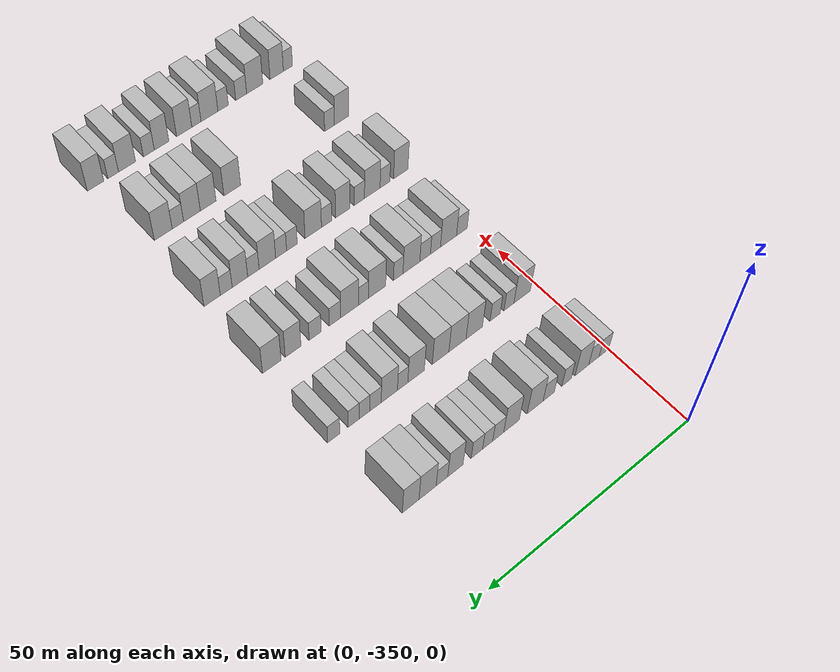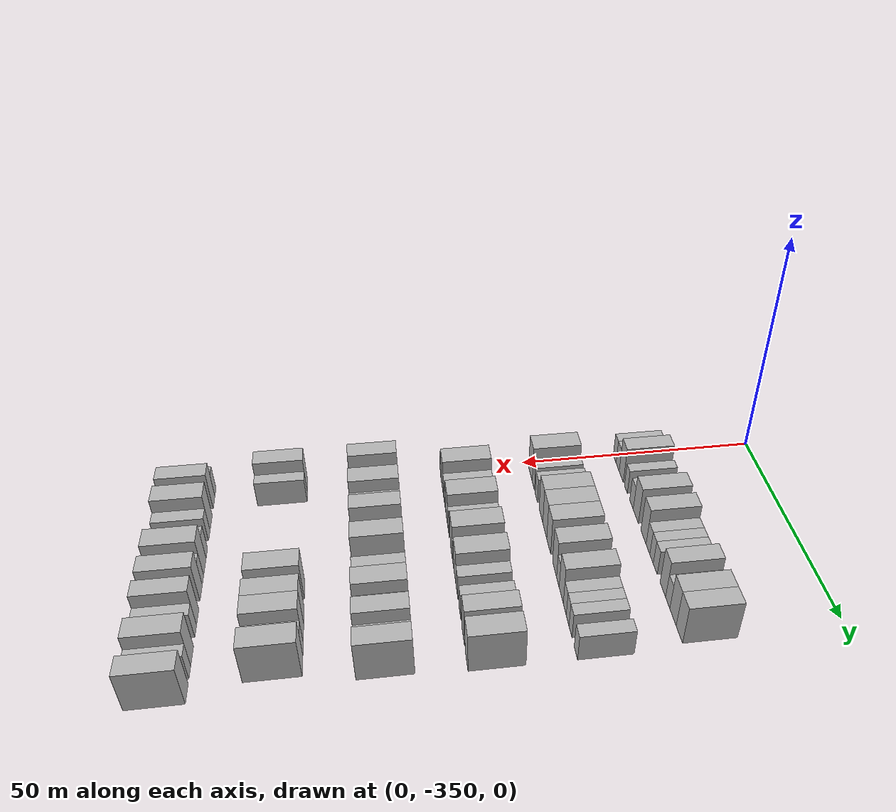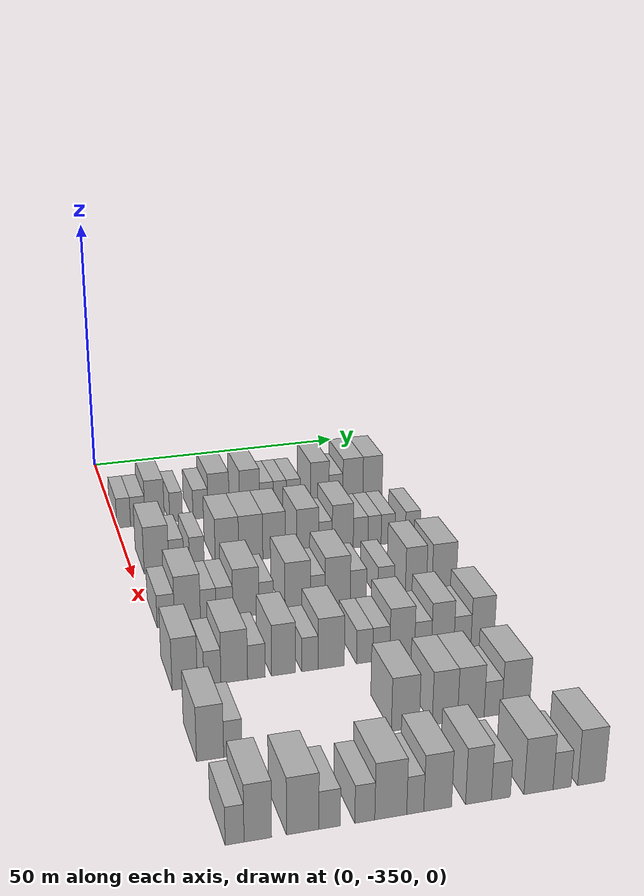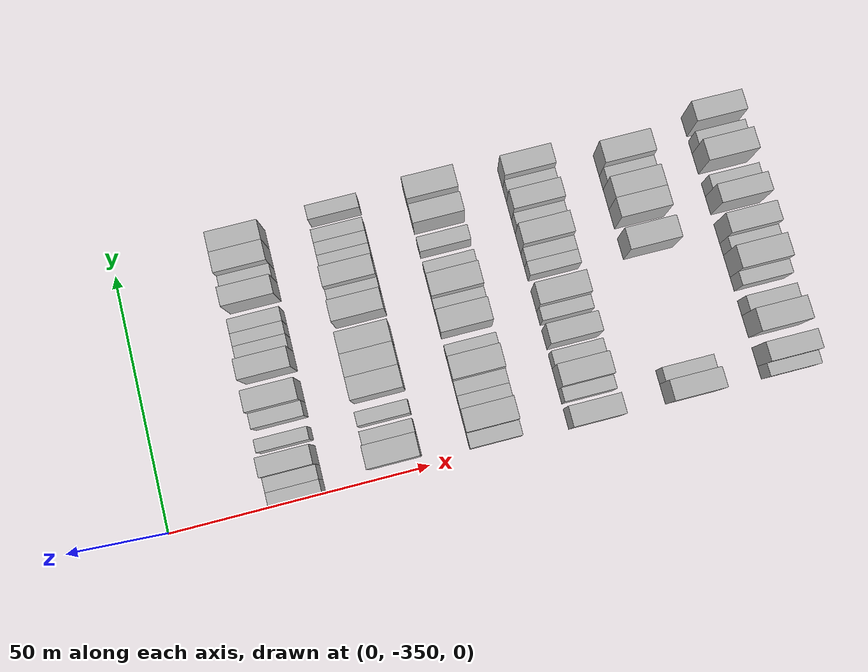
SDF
<sdf version="1.6">
 <world name="default">
  <model name="building_1">
   <static>1</static>
   <pose>25.0000 -348.7073 0 0.000000 0.000000 0.000000</pose>
   <link name="link">
    <pose>0 0 3.00 0 0 0</pose>
    <collision name="collision"><geometry><box><size>10.0000 2.5855 6.0000</size></box></geometry></collision>
    <visual name="visual">
     <cast_shadows>0</cast_shadows>
     <geometry><box><size>10.0000 2.5855 6.0000</size></box></geometry>
     <material>
      <script>
       <uri>model://HANNAS_wall/materials/scripts</uri>
       <uri>model://HANNAS_wall/materials/textures</uri>
       <name>vrc/HANNAS_wall</name>
      </script>
     </material>
    </visual>
   </link>
  </model>
  <model name="building_2">
   <static>1</static>
   <pose>25.0000 -346.0323 0 0.000000 0.000000 0.000000</pose>
   <link name="link">
    <pose>0 0 3.00 0 0 0</pose>
    <collision name="collision"><geometry><box><size>10.0000 2.7644 6.0000</size></box></geometry></collision>
    <visual name="visual">
     <cast_shadows>0</cast_shadows>
     <geometry><box><size>10.0000 2.7644 6.0000</size></box></geometry>
     <material>
      <script>
       <uri>model://HANNAS_wall/materials/scripts</uri>
       <uri>model://HANNAS_wall/materials/textures</uri>
       <name>vrc/HANNAS_wall</name>
      </script>
     </material>
    </visual>
   </link>
  </model>
  <model name="building_3">
   <static>1</static>
   <pose>25.0000 -342.8261 0 0.000000 0.000000 0.000000</pose>
   <link name="link">
    <pose>0 0 4.50 0 0 0</pose>
    <collision name="collision"><geometry><box><size>10.0000 3.6479 9.0000</size></box></geometry></collision>
    <visual name="visual">
     <cast_shadows>0</cast_shadows>
     <geometry><box><size>10.0000 3.6479 9.0000</size></box></geometry>
     <material>
      <script>
       <uri>model://HANNAS_wall/materials/scripts</uri>
       <uri>model://HANNAS_wall/materials/textures</uri>
       <name>vrc/HANNAS_wall</name>
      </script>
     </material>
    </visual>
   </link>
  </model>
  <model name="building_4">
   <static>1</static>
   <pose>25.0000 -338.7797 0 0.000000 0.000000 0.000000</pose>
   <link name="link">
    <pose>0 0 3.00 0 0 0</pose>
    <collision name="collision"><geometry><box><size>10.0000 2.4451 6.0000</size></box></geometry></collision>
    <visual name="visual">
     <cast_shadows>0</cast_shadows>
     <geometry><box><size>10.0000 2.4451 6.0000</size></box></geometry>
     <material>
      <script>
       <uri>model://HANNAS_wall/materials/scripts</uri>
       <uri>model://HANNAS_wall/materials/textures</uri>
       <name>vrc/HANNAS_wall</name>
      </script>
     </material>
    </visual>
   </link>
  </model>
  <model name="building_5">
   <static>1</static>
   <pose>25.0000 -334.1090 0 0.000000 0.000000 0.000000</pose>
   <link name="link">
    <pose>0 0 3.00 0 0 0</pose>
    <collision name="collision"><geometry><box><size>10.0000 2.8962 6.0000</size></box></geometry></collision>
    <visual name="visual">
     <cast_shadows>0</cast_shadows>
     <geometry><box><size>10.0000 2.8962 6.0000</size></box></geometry>
     <material>
      <script>
       <uri>model://HANNAS_wall/materials/scripts</uri>
       <uri>model://HANNAS_wall/materials/textures</uri>
       <name>vrc/HANNAS_wall</name>
      </script>
     </material>
    </visual>
   </link>
  </model>
  <model name="building_6">
   <static>1</static>
   <pose>25.0000 -330.6155 0 0.000000 0.000000 0.000000</pose>
   <link name="link">
    <pose>0 0 4.50 0 0 0</pose>
    <collision name="collision"><geometry><box><size>10.0000 4.0908 9.0000</size></box></geometry></collision>
    <visual name="visual">
     <cast_shadows>0</cast_shadows>
     <geometry><box><size>10.0000 4.0908 9.0000</size></box></geometry>
     <material>
      <script>
       <uri>model://HANNAS_wall/materials/scripts</uri>
       <uri>model://HANNAS_wall/materials/textures</uri>
       <name>vrc/HANNAS_wall</name>
      </script>
     </material>
    </visual>
   </link>
  </model>
  <model name="building_7">
   <static>1</static>
   <pose>25.0000 -324.6084 0 0.000000 0.000000 0.000000</pose>
   <link name="link">
    <pose>0 0 4.50 0 0 0</pose>
    <collision name="collision"><geometry><box><size>10.0000 3.9235 9.0000</size></box></geometry></collision>
    <visual name="visual">
     <cast_shadows>0</cast_shadows>
     <geometry><box><size>10.0000 3.9235 9.0000</size></box></geometry>
     <material>
      <script>
       <uri>model://HANNAS_wall/materials/scripts</uri>
       <uri>model://HANNAS_wall/materials/textures</uri>
       <name>vrc/HANNAS_wall</name>
      </script>
     </material>
    </visual>
   </link>
  </model>
  <model name="building_8">
   <static>1</static>
   <pose>25.0000 -321.2677 0 0.000000 0.000000 0.000000</pose>
   <link name="link">
    <pose>0 0 3.00 0 0 0</pose>
    <collision name="collision"><geometry><box><size>10.0000 2.7579 6.0000</size></box></geometry></collision>
    <visual name="visual">
     <cast_shadows>0</cast_shadows>
     <geometry><box><size>10.0000 2.7579 6.0000</size></box></geometry>
     <material>
      <script>
       <uri>model://HANNAS_wall/materials/scripts</uri>
       <uri>model://HANNAS_wall/materials/textures</uri>
       <name>vrc/HANNAS_wall</name>
      </script>
     </material>
    </visual>
   </link>
  </model>
  <model name="building_9">
   <static>1</static>
   <pose>25.0000 -318.6427 0 0.000000 0.000000 0.000000</pose>
   <link name="link">
    <pose>0 0 3.00 0 0 0</pose>
    <collision name="collision"><geometry><box><size>10.0000 2.4921 6.0000</size></box></geometry></collision>
    <visual name="visual">
     <cast_shadows>0</cast_shadows>
     <geometry><box><size>10.0000 2.4921 6.0000</size></box></geometry>
     <material>
      <script>
       <uri>model://HANNAS_wall/materials/scripts</uri>
       <uri>model://HANNAS_wall/materials/textures</uri>
       <name>vrc/HANNAS_wall</name>
      </script>
     </material>
    </visual>
   </link>
  </model>
  <model name="building_10">
   <static>1</static>
   <pose>25.0000 -316.0054 0 0.000000 0.000000 0.000000</pose>
   <link name="link">
    <pose>0 0 3.00 0 0 0</pose>
    <collision name="collision"><geometry><box><size>10.0000 2.7827 6.0000</size></box></geometry></collision>
    <visual name="visual">
     <cast_shadows>0</cast_shadows>
     <geometry><box><size>10.0000 2.7827 6.0000</size></box></geometry>
     <material>
      <script>
       <uri>model://HANNAS_wall/materials/scripts</uri>
       <uri>model://HANNAS_wall/materials/textures</uri>
       <name>vrc/HANNAS_wall</name>
      </script>
     </material>
    </visual>
   </link>
  </model>
  <model name="building_11">
   <static>1</static>
   <pose>25.0000 -310.7575 0 0.000000 0.000000 0.000000</pose>
   <link name="link">
    <pose>0 0 4.50 0 0 0</pose>
    <collision name="collision"><geometry><box><size>10.0000 3.7130 9.0000</size></box></geometry></collision>
    <visual name="visual">
     <cast_shadows>0</cast_shadows>
     <geometry><box><size>10.0000 3.7130 9.0000</size></box></geometry>
     <material>
      <script>
       <uri>model://HANNAS_wall/materials/scripts</uri>
       <uri>model://HANNAS_wall/materials/textures</uri>
       <name>vrc/HANNAS_wall</name>
      </script>
     </material>
    </visual>
   </link>
  </model>
  <model name="building_12">
   <static>1</static>
   <pose>25.0000 -307.5139 0 0.000000 0.000000 0.000000</pose>
   <link name="link">
    <pose>0 0 3.00 0 0 0</pose>
    <collision name="collision"><geometry><box><size>10.0000 2.7743 6.0000</size></box></geometry></collision>
    <visual name="visual">
     <cast_shadows>0</cast_shadows>
     <geometry><box><size>10.0000 2.7743 6.0000</size></box></geometry>
     <material>
      <script>
       <uri>model://HANNAS_wall/materials/scripts</uri>
       <uri>model://HANNAS_wall/materials/textures</uri>
       <name>vrc/HANNAS_wall</name>
      </script>
     </material>
    </visual>
   </link>
  </model>
  <model name="building_13">
   <static>1</static>
   <pose>25.0000 -304.1083 0 0.000000 0.000000 0.000000</pose>
   <link name="link">
    <pose>0 0 4.50 0 0 0</pose>
    <collision name="collision"><geometry><box><size>10.0000 4.0368 9.0000</size></box></geometry></collision>
    <visual name="visual">
     <cast_shadows>0</cast_shadows>
     <geometry><box><size>10.0000 4.0368 9.0000</size></box></geometry>
     <material>
      <script>
       <uri>model://HANNAS_wall/materials/scripts</uri>
       <uri>model://HANNAS_wall/materials/textures</uri>
       <name>vrc/HANNAS_wall</name>
      </script>
     </material>
    </visual>
   </link>
  </model>
  <model name="building_14">
   <static>1</static>
   <pose>25.0000 -300.1330 0 0.000000 0.000000 0.000000</pose>
   <link name="link">
    <pose>0 0 4.50 0 0 0</pose>
    <collision name="collision"><geometry><box><size>10.0000 3.9138 9.0000</size></box></geometry></collision>
    <visual name="visual">
     <cast_shadows>0</cast_shadows>
     <geometry><box><size>10.0000 3.9138 9.0000</size></box></geometry>
     <material>
      <script>
       <uri>model://HANNAS_wall/materials/scripts</uri>
       <uri>model://HANNAS_wall/materials/textures</uri>
       <name>vrc/HANNAS_wall</name>
      </script>
     </material>
    </visual>
   </link>
  </model>
  <model name="building_175">
   <static>1</static>
   <pose>44.0000 -345.8086 0 0.000000 0.000000 0.000000</pose>
   <link name="link">
    <pose>0 0 4.50 0 0 0</pose>
    <collision name="collision"><geometry><box><size>10.0000 4.3828 9.0000</size></box></geometry></collision>
    <visual name="visual">
     <cast_shadows>0</cast_shadows>
     <geometry><box><size>10.0000 4.3828 9.0000</size></box></geometry>
     <material>
      <script>
       <uri>model://HANNAS_wall/materials/scripts</uri>
       <uri>model://HANNAS_wall/materials/textures</uri>
       <name>vrc/HANNAS_wall</name>
      </script>
     </material>
    </visual>
   </link>
  </model>
  <model name="building_176">
   <static>1</static>
   <pose>44.0000 -342.2742 0 0.000000 0.000000 0.000000</pose>
   <link name="link">
    <pose>0 0 3.00 0 0 0</pose>
    <collision name="collision"><geometry><box><size>10.0000 2.6858 6.0000</size></box></geometry></collision>
    <visual name="visual">
     <cast_shadows>0</cast_shadows>
     <geometry><box><size>10.0000 2.6858 6.0000</size></box></geometry>
     <material>
      <script>
       <uri>model://HANNAS_wall/materials/scripts</uri>
       <uri>model://HANNAS_wall/materials/textures</uri>
       <name>vrc/HANNAS_wall</name>
      </script>
     </material>
    </visual>
   </link>
  </model>
  <model name="building_177">
   <static>1</static>
   <pose>44.0000 -338.6037 0 0.000000 0.000000 0.000000</pose>
   <link name="link">
    <pose>0 0 3.00 0 0 0</pose>
    <collision name="collision"><geometry><box><size>10.0000 2.6552 6.0000</size></box></geometry></collision>
    <visual name="visual">
     <cast_shadows>0</cast_shadows>
     <geometry><box><size>10.0000 2.6552 6.0000</size></box></geometry>
     <material>
      <script>
       <uri>model://HANNAS_wall/materials/scripts</uri>
       <uri>model://HANNAS_wall/materials/textures</uri>
       <name>vrc/HANNAS_wall</name>
      </script>
     </material>
    </visual>
   </link>
  </model>
  <model name="building_178">
   <static>1</static>
   <pose>44.0000 -333.1437 0 0.000000 0.000000 0.000000</pose>
   <link name="link">
    <pose>0 0 4.50 0 0 0</pose>
    <collision name="collision"><geometry><box><size>10.0000 4.2649 9.0000</size></box></geometry></collision>
    <visual name="visual">
     <cast_shadows>0</cast_shadows>
     <geometry><box><size>10.0000 4.2649 9.0000</size></box></geometry>
     <material>
      <script>
       <uri>model://HANNAS_wall/materials/scripts</uri>
       <uri>model://HANNAS_wall/materials/textures</uri>
       <name>vrc/HANNAS_wall</name>
      </script>
     </material>
    </visual>
   </link>
  </model>
  <model name="building_179">
   <static>1</static>
   <pose>44.0000 -328.8095 0 0.000000 0.000000 0.000000</pose>
   <link name="link">
    <pose>0 0 4.50 0 0 0</pose>
    <collision name="collision"><geometry><box><size>10.0000 4.4035 9.0000</size></box></geometry></collision>
    <visual name="visual">
     <cast_shadows>0</cast_shadows>
     <geometry><box><size>10.0000 4.4035 9.0000</size></box></geometry>
     <material>
      <script>
       <uri>model://HANNAS_wall/materials/scripts</uri>
       <uri>model://HANNAS_wall/materials/textures</uri>
       <name>vrc/HANNAS_wall</name>
      </script>
     </material>
    </visual>
   </link>
  </model>
  <model name="building_180">
   <static>1</static>
   <pose>44.0000 -324.5075 0 0.000000 0.000000 0.000000</pose>
   <link name="link">
    <pose>0 0 4.50 0 0 0</pose>
    <collision name="collision"><geometry><box><size>10.0000 4.2003 9.0000</size></box></geometry></collision>
    <visual name="visual">
     <cast_shadows>0</cast_shadows>
     <geometry><box><size>10.0000 4.2003 9.0000</size></box></geometry>
     <material>
      <script>
       <uri>model://HANNAS_wall/materials/scripts</uri>
       <uri>model://HANNAS_wall/materials/textures</uri>
       <name>vrc/HANNAS_wall</name>
      </script>
     </material>
    </visual>
   </link>
  </model>
  <model name="building_181">
   <static>1</static>
   <pose>44.0000 -318.3518 0 0.000000 0.000000 0.000000</pose>
   <link name="link">
    <pose>0 0 4.50 0 0 0</pose>
    <collision name="collision"><geometry><box><size>10.0000 4.1111 9.0000</size></box></geometry></collision>
    <visual name="visual">
     <cast_shadows>0</cast_shadows>
     <geometry><box><size>10.0000 4.1111 9.0000</size></box></geometry>
     <material>
      <script>
       <uri>model://HANNAS_wall/materials/scripts</uri>
       <uri>model://HANNAS_wall/materials/textures</uri>
       <name>vrc/HANNAS_wall</name>
      </script>
     </material>
    </visual>
   </link>
  </model>
  <model name="building_182">
   <static>1</static>
   <pose>44.0000 -315.0129 0 0.000000 0.000000 0.000000</pose>
   <link name="link">
    <pose>0 0 3.00 0 0 0</pose>
    <collision name="collision"><geometry><box><size>10.0000 2.5668 6.0000</size></box></geometry></collision>
    <visual name="visual">
     <cast_shadows>0</cast_shadows>
     <geometry><box><size>10.0000 2.5668 6.0000</size></box></geometry>
     <material>
      <script>
       <uri>model://HANNAS_wall/materials/scripts</uri>
       <uri>model://HANNAS_wall/materials/textures</uri>
       <name>vrc/HANNAS_wall</name>
      </script>
     </material>
    </visual>
   </link>
  </model>
  <model name="building_183">
   <static>1</static>
   <pose>44.0000 -311.7426 0 0.000000 0.000000 0.000000</pose>
   <link name="link">
    <pose>0 0 4.50 0 0 0</pose>
    <collision name="collision"><geometry><box><size>10.0000 3.9736 9.0000</size></box></geometry></collision>
    <visual name="visual">
     <cast_shadows>0</cast_shadows>
     <geometry><box><size>10.0000 3.9736 9.0000</size></box></geometry>
     <material>
      <script>
       <uri>model://HANNAS_wall/materials/scripts</uri>
       <uri>model://HANNAS_wall/materials/textures</uri>
       <name>vrc/HANNAS_wall</name>
      </script>
     </material>
    </visual>
   </link>
  </model>
  <model name="building_184">
   <static>1</static>
   <pose>44.0000 -308.3652 0 0.000000 0.000000 0.000000</pose>
   <link name="link">
    <pose>0 0 3.00 0 0 0</pose>
    <collision name="collision"><geometry><box><size>10.0000 2.7812 6.0000</size></box></geometry></collision>
    <visual name="visual">
     <cast_shadows>0</cast_shadows>
     <geometry><box><size>10.0000 2.7812 6.0000</size></box></geometry>
     <material>
      <script>
       <uri>model://HANNAS_wall/materials/scripts</uri>
       <uri>model://HANNAS_wall/materials/textures</uri>
       <name>vrc/HANNAS_wall</name>
      </script>
     </material>
    </visual>
   </link>
  </model>
  <model name="building_185">
   <static>1</static>
   <pose>44.0000 -305.7144 0 0.000000 0.000000 0.000000</pose>
   <link name="link">
    <pose>0 0 3.00 0 0 0</pose>
    <collision name="collision"><geometry><box><size>10.0000 2.5204 6.0000</size></box></geometry></collision>
    <visual name="visual">
     <cast_shadows>0</cast_shadows>
     <geometry><box><size>10.0000 2.5204 6.0000</size></box></geometry>
     <material>
      <script>
       <uri>model://HANNAS_wall/materials/scripts</uri>
       <uri>model://HANNAS_wall/materials/textures</uri>
       <name>vrc/HANNAS_wall</name>
      </script>
     </material>
    </visual>
   </link>
  </model>
  <model name="building_186">
   <static>1</static>
   <pose>44.0000 -303.1434 0 0.000000 0.000000 0.000000</pose>
   <link name="link">
    <pose>0 0 3.00 0 0 0</pose>
    <collision name="collision"><geometry><box><size>10.0000 2.6217 6.0000</size></box></geometry></collision>
    <visual name="visual">
     <cast_shadows>0</cast_shadows>
     <geometry><box><size>10.0000 2.6217 6.0000</size></box></geometry>
     <material>
      <script>
       <uri>model://HANNAS_wall/materials/scripts</uri>
       <uri>model://HANNAS_wall/materials/textures</uri>
       <name>vrc/HANNAS_wall</name>
      </script>
     </material>
    </visual>
   </link>
  </model>
  <model name="building_187">
   <static>1</static>
   <pose>44.0000 -298.4089 0 0.000000 0.000000 0.000000</pose>
   <link name="link">
    <pose>0 0 3.00 0 0 0</pose>
    <collision name="collision"><geometry><box><size>10.0000 2.8474 6.0000</size></box></geometry></collision>
    <visual name="visual">
     <cast_shadows>0</cast_shadows>
     <geometry><box><size>10.0000 2.8474 6.0000</size></box></geometry>
     <material>
      <script>
       <uri>model://HANNAS_wall/materials/scripts</uri>
       <uri>model://HANNAS_wall/materials/textures</uri>
       <name>vrc/HANNAS_wall</name>
      </script>
     </material>
    </visual>
   </link>
  </model>
  <model name="building_343">
   <static>1</static>
   <pose>63.0000 -347.5538 0 0.000000 0.000000 0.000000</pose>
   <link name="link">
    <pose>0 0 3.00 0 0 0</pose>
    <collision name="collision"><geometry><box><size>10.0000 2.8924 6.0000</size></box></geometry></collision>
    <visual name="visual">
     <cast_shadows>0</cast_shadows>
     <geometry><box><size>10.0000 2.8924 6.0000</size></box></geometry>
     <material>
      <script>
       <uri>model://HANNAS_wall/materials/scripts</uri>
       <uri>model://HANNAS_wall/materials/textures</uri>
       <name>vrc/HANNAS_wall</name>
      </script>
     </material>
    </visual>
   </link>
  </model>
  <model name="building_344">
   <static>1</static>
   <pose>63.0000 -343.9411 0 0.000000 0.000000 0.000000</pose>
   <link name="link">
    <pose>0 0 4.50 0 0 0</pose>
    <collision name="collision"><geometry><box><size>10.0000 4.3331 9.0000</size></box></geometry></collision>
    <visual name="visual">
     <cast_shadows>0</cast_shadows>
     <geometry><box><size>10.0000 4.3331 9.0000</size></box></geometry>
     <material>
      <script>
       <uri>model://HANNAS_wall/materials/scripts</uri>
       <uri>model://HANNAS_wall/materials/textures</uri>
       <name>vrc/HANNAS_wall</name>
      </script>
     </material>
    </visual>
   </link>
  </model>
  <model name="building_345">
   <static>1</static>
   <pose>63.0000 -340.4442 0 0.000000 0.000000 0.000000</pose>
   <link name="link">
    <pose>0 0 3.00 0 0 0</pose>
    <collision name="collision"><geometry><box><size>10.0000 2.6606 6.0000</size></box></geometry></collision>
    <visual name="visual">
     <cast_shadows>0</cast_shadows>
     <geometry><box><size>10.0000 2.6606 6.0000</size></box></geometry>
     <material>
      <script>
       <uri>model://HANNAS_wall/materials/scripts</uri>
       <uri>model://HANNAS_wall/materials/textures</uri>
       <name>vrc/HANNAS_wall</name>
      </script>
     </material>
    </visual>
   </link>
  </model>
  <model name="building_346">
   <static>1</static>
   <pose>63.0000 -337.7050 0 0.000000 0.000000 0.000000</pose>
   <link name="link">
    <pose>0 0 3.00 0 0 0</pose>
    <collision name="collision"><geometry><box><size>10.0000 2.8179 6.0000</size></box></geometry></collision>
    <visual name="visual">
     <cast_shadows>0</cast_shadows>
     <geometry><box><size>10.0000 2.8179 6.0000</size></box></geometry>
     <material>
      <script>
       <uri>model://HANNAS_wall/materials/scripts</uri>
       <uri>model://HANNAS_wall/materials/textures</uri>
       <name>vrc/HANNAS_wall</name>
      </script>
     </material>
    </visual>
   </link>
  </model>
  <model name="building_347">
   <static>1</static>
   <pose>63.0000 -334.0815 0 0.000000 0.000000 0.000000</pose>
   <link name="link">
    <pose>0 0 4.50 0 0 0</pose>
    <collision name="collision"><geometry><box><size>10.0000 4.4290 9.0000</size></box></geometry></collision>
    <visual name="visual">
     <cast_shadows>0</cast_shadows>
     <geometry><box><size>10.0000 4.4290 9.0000</size></box></geometry>
     <material>
      <script>
       <uri>model://HANNAS_wall/materials/scripts</uri>
       <uri>model://HANNAS_wall/materials/textures</uri>
       <name>vrc/HANNAS_wall</name>
      </script>
     </material>
    </visual>
   </link>
  </model>
  <model name="building_348">
   <static>1</static>
   <pose>63.0000 -330.6281 0 0.000000 0.000000 0.000000</pose>
   <link name="link">
    <pose>0 0 3.00 0 0 0</pose>
    <collision name="collision"><geometry><box><size>10.0000 2.4778 6.0000</size></box></geometry></collision>
    <visual name="visual">
     <cast_shadows>0</cast_shadows>
     <geometry><box><size>10.0000 2.4778 6.0000</size></box></geometry>
     <material>
      <script>
       <uri>model://HANNAS_wall/materials/scripts</uri>
       <uri>model://HANNAS_wall/materials/textures</uri>
       <name>vrc/HANNAS_wall</name>
      </script>
     </material>
    </visual>
   </link>
  </model>
  <model name="building_349">
   <static>1</static>
   <pose>63.0000 -325.1712 0 0.000000 0.000000 0.000000</pose>
   <link name="link">
    <pose>0 0 4.50 0 0 0</pose>
    <collision name="collision"><geometry><box><size>10.0000 4.4361 9.0000</size></box></geometry></collision>
    <visual name="visual">
     <cast_shadows>0</cast_shadows>
     <geometry><box><size>10.0000 4.4361 9.0000</size></box></geometry>
     <material>
      <script>
       <uri>model://HANNAS_wall/materials/scripts</uri>
       <uri>model://HANNAS_wall/materials/textures</uri>
       <name>vrc/HANNAS_wall</name>
      </script>
     </material>
    </visual>
   </link>
  </model>
  <model name="building_350">
   <static>1</static>
   <pose>63.0000 -321.6817 0 0.000000 0.000000 0.000000</pose>
   <link name="link">
    <pose>0 0 3.00 0 0 0</pose>
    <collision name="collision"><geometry><box><size>10.0000 2.5430 6.0000</size></box></geometry></collision>
    <visual name="visual">
     <cast_shadows>0</cast_shadows>
     <geometry><box><size>10.0000 2.5430 6.0000</size></box></geometry>
     <material>
      <script>
       <uri>model://HANNAS_wall/materials/scripts</uri>
       <uri>model://HANNAS_wall/materials/textures</uri>
       <name>vrc/HANNAS_wall</name>
      </script>
     </material>
    </visual>
   </link>
  </model>
  <model name="building_351">
   <static>1</static>
   <pose>63.0000 -318.2050 0 0.000000 0.000000 0.000000</pose>
   <link name="link">
    <pose>0 0 4.50 0 0 0</pose>
    <collision name="collision"><geometry><box><size>10.0000 4.4103 9.0000</size></box></geometry></collision>
    <visual name="visual">
     <cast_shadows>0</cast_shadows>
     <geometry><box><size>10.0000 4.4103 9.0000</size></box></geometry>
     <material>
      <script>
       <uri>model://HANNAS_wall/materials/scripts</uri>
       <uri>model://HANNAS_wall/materials/textures</uri>
       <name>vrc/HANNAS_wall</name>
      </script>
     </material>
    </visual>
   </link>
  </model>
  <model name="building_352">
   <static>1</static>
   <pose>63.0000 -314.5771 0 0.000000 0.000000 0.000000</pose>
   <link name="link">
    <pose>0 0 3.00 0 0 0</pose>
    <collision name="collision"><geometry><box><size>10.0000 2.8456 6.0000</size></box></geometry></collision>
    <visual name="visual">
     <cast_shadows>0</cast_shadows>
     <geometry><box><size>10.0000 2.8456 6.0000</size></box></geometry>
     <material>
      <script>
       <uri>model://HANNAS_wall/materials/scripts</uri>
       <uri>model://HANNAS_wall/materials/textures</uri>
       <name>vrc/HANNAS_wall</name>
      </script>
     </material>
    </visual>
   </link>
  </model>
  <model name="building_353">
   <static>1</static>
   <pose>63.0000 -309.6817 0 0.000000 0.000000 0.000000</pose>
   <link name="link">
    <pose>0 0 3.00 0 0 0</pose>
    <collision name="collision"><geometry><box><size>10.0000 2.9452 6.0000</size></box></geometry></collision>
    <visual name="visual">
     <cast_shadows>0</cast_shadows>
     <geometry><box><size>10.0000 2.9452 6.0000</size></box></geometry>
     <material>
      <script>
       <uri>model://HANNAS_wall/materials/scripts</uri>
       <uri>model://HANNAS_wall/materials/textures</uri>
       <name>vrc/HANNAS_wall</name>
      </script>
     </material>
    </visual>
   </link>
  </model>
  <model name="building_354">
   <static>1</static>
   <pose>63.0000 -304.3109 0 0.000000 0.000000 0.000000</pose>
   <link name="link">
    <pose>0 0 4.50 0 0 0</pose>
    <collision name="collision"><geometry><box><size>10.0000 3.7964 9.0000</size></box></geometry></collision>
    <visual name="visual">
     <cast_shadows>0</cast_shadows>
     <geometry><box><size>10.0000 3.7964 9.0000</size></box></geometry>
     <material>
      <script>
       <uri>model://HANNAS_wall/materials/scripts</uri>
       <uri>model://HANNAS_wall/materials/textures</uri>
       <name>vrc/HANNAS_wall</name>
      </script>
     </material>
    </visual>
   </link>
  </model>
  <model name="building_355">
   <static>1</static>
   <pose>63.0000 -299.2064 0 0.000000 0.000000 0.000000</pose>
   <link name="link">
    <pose>0 0 4.50 0 0 0</pose>
    <collision name="collision"><geometry><box><size>10.0000 4.4126 9.0000</size></box></geometry></collision>
    <visual name="visual">
     <cast_shadows>0</cast_shadows>
     <geometry><box><size>10.0000 4.4126 9.0000</size></box></geometry>
     <material>
      <script>
       <uri>model://HANNAS_wall/materials/scripts</uri>
       <uri>model://HANNAS_wall/materials/textures</uri>
       <name>vrc/HANNAS_wall</name>
      </script>
     </material>
    </visual>
   </link>
  </model>
  <model name="building_508">
   <static>1</static>
   <pose>82.0000 -348.0378 0 0.000000 0.000000 0.000000</pose>
   <link name="link">
    <pose>0 0 4.50 0 0 0</pose>
    <collision name="collision"><geometry><box><size>10.0000 3.9244 9.0000</size></box></geometry></collision>
    <visual name="visual">
     <cast_shadows>0</cast_shadows>
     <geometry><box><size>10.0000 3.9244 9.0000</size></box></geometry>
     <material>
      <script>
       <uri>model://HANNAS_wall/materials/scripts</uri>
       <uri>model://HANNAS_wall/materials/textures</uri>
       <name>vrc/HANNAS_wall</name>
      </script>
     </material>
    </visual>
   </link>
  </model>
  <model name="building_509">
   <static>1</static>
   <pose>82.0000 -343.7389 0 0.000000 0.000000 0.000000</pose>
   <link name="link">
    <pose>0 0 3.00 0 0 0</pose>
    <collision name="collision"><geometry><box><size>10.0000 2.6735 6.0000</size></box></geometry></collision>
    <visual name="visual">
     <cast_shadows>0</cast_shadows>
     <geometry><box><size>10.0000 2.6735 6.0000</size></box></geometry>
     <material>
      <script>
       <uri>model://HANNAS_wall/materials/scripts</uri>
       <uri>model://HANNAS_wall/materials/textures</uri>
       <name>vrc/HANNAS_wall</name>
      </script>
     </material>
    </visual>
   </link>
  </model>
  <model name="building_510">
   <static>1</static>
   <pose>82.0000 -340.3050 0 0.000000 0.000000 0.000000</pose>
   <link name="link">
    <pose>0 0 4.50 0 0 0</pose>
    <collision name="collision"><geometry><box><size>10.0000 4.1943 9.0000</size></box></geometry></collision>
    <visual name="visual">
     <cast_shadows>0</cast_shadows>
     <geometry><box><size>10.0000 4.1943 9.0000</size></box></geometry>
     <material>
      <script>
       <uri>model://HANNAS_wall/materials/scripts</uri>
       <uri>model://HANNAS_wall/materials/textures</uri>
       <name>vrc/HANNAS_wall</name>
      </script>
     </material>
    </visual>
   </link>
  </model>
  <model name="building_511">
   <static>1</static>
   <pose>82.0000 -336.8036 0 0.000000 0.000000 0.000000</pose>
   <link name="link">
    <pose>0 0 3.00 0 0 0</pose>
    <collision name="collision"><geometry><box><size>10.0000 2.8085 6.0000</size></box></geometry></collision>
    <visual name="visual">
     <cast_shadows>0</cast_shadows>
     <geometry><box><size>10.0000 2.8085 6.0000</size></box></geometry>
     <material>
      <script>
       <uri>model://HANNAS_wall/materials/scripts</uri>
       <uri>model://HANNAS_wall/materials/textures</uri>
       <name>vrc/HANNAS_wall</name>
      </script>
     </material>
    </visual>
   </link>
  </model>
  <model name="building_512">
   <static>1</static>
   <pose>82.0000 -332.4793 0 0.000000 0.000000 0.000000</pose>
   <link name="link">
    <pose>0 0 4.50 0 0 0</pose>
    <collision name="collision"><geometry><box><size>10.0000 3.8402 9.0000</size></box></geometry></collision>
    <visual name="visual">
     <cast_shadows>0</cast_shadows>
     <geometry><box><size>10.0000 3.8402 9.0000</size></box></geometry>
     <material>
      <script>
       <uri>model://HANNAS_wall/materials/scripts</uri>
       <uri>model://HANNAS_wall/materials/textures</uri>
       <name>vrc/HANNAS_wall</name>
      </script>
     </material>
    </visual>
   </link>
  </model>
  <model name="building_513">
   <static>1</static>
   <pose>82.0000 -328.2281 0 0.000000 0.000000 0.000000</pose>
   <link name="link">
    <pose>0 0 3.00 0 0 0</pose>
    <collision name="collision"><geometry><box><size>10.0000 2.6622 6.0000</size></box></geometry></collision>
    <visual name="visual">
     <cast_shadows>0</cast_shadows>
     <geometry><box><size>10.0000 2.6622 6.0000</size></box></geometry>
     <material>
      <script>
       <uri>model://HANNAS_wall/materials/scripts</uri>
       <uri>model://HANNAS_wall/materials/textures</uri>
       <name>vrc/HANNAS_wall</name>
      </script>
     </material>
    </visual>
   </link>
  </model>
  <model name="building_514">
   <static>1</static>
   <pose>82.0000 -324.7795 0 0.000000 0.000000 0.000000</pose>
   <link name="link">
    <pose>0 0 4.50 0 0 0</pose>
    <collision name="collision"><geometry><box><size>10.0000 4.2350 9.0000</size></box></geometry></collision>
    <visual name="visual">
     <cast_shadows>0</cast_shadows>
     <geometry><box><size>10.0000 4.2350 9.0000</size></box></geometry>
     <material>
      <script>
       <uri>model://HANNAS_wall/materials/scripts</uri>
       <uri>model://HANNAS_wall/materials/textures</uri>
       <name>vrc/HANNAS_wall</name>
      </script>
     </material>
    </visual>
   </link>
  </model>
  <model name="building_515">
   <static>1</static>
   <pose>82.0000 -319.3140 0 0.000000 0.000000 0.000000</pose>
   <link name="link">
    <pose>0 0 3.00 0 0 0</pose>
    <collision name="collision"><geometry><box><size>10.0000 2.6960 6.0000</size></box></geometry></collision>
    <visual name="visual">
     <cast_shadows>0</cast_shadows>
     <geometry><box><size>10.0000 2.6960 6.0000</size></box></geometry>
     <material>
      <script>
       <uri>model://HANNAS_wall/materials/scripts</uri>
       <uri>model://HANNAS_wall/materials/textures</uri>
       <name>vrc/HANNAS_wall</name>
      </script>
     </material>
    </visual>
   </link>
  </model>
  <model name="building_516">
   <static>1</static>
   <pose>82.0000 -316.5843 0 0.000000 0.000000 0.000000</pose>
   <link name="link">
    <pose>0 0 3.00 0 0 0</pose>
    <collision name="collision"><geometry><box><size>10.0000 2.7633 6.0000</size></box></geometry></collision>
    <visual name="visual">
     <cast_shadows>0</cast_shadows>
     <geometry><box><size>10.0000 2.7633 6.0000</size></box></geometry>
     <material>
      <script>
       <uri>model://HANNAS_wall/materials/scripts</uri>
       <uri>model://HANNAS_wall/materials/textures</uri>
       <name>vrc/HANNAS_wall</name>
      </script>
     </material>
    </visual>
   </link>
  </model>
  <model name="building_517">
   <static>1</static>
   <pose>82.0000 -313.1327 0 0.000000 0.000000 0.000000</pose>
   <link name="link">
    <pose>0 0 4.50 0 0 0</pose>
    <collision name="collision"><geometry><box><size>10.0000 4.1400 9.0000</size></box></geometry></collision>
    <visual name="visual">
     <cast_shadows>0</cast_shadows>
     <geometry><box><size>10.0000 4.1400 9.0000</size></box></geometry>
     <material>
      <script>
       <uri>model://HANNAS_wall/materials/scripts</uri>
       <uri>model://HANNAS_wall/materials/textures</uri>
       <name>vrc/HANNAS_wall</name>
      </script>
     </material>
    </visual>
   </link>
  </model>
  <model name="building_518">
   <static>1</static>
   <pose>82.0000 -309.6526 0 0.000000 0.000000 0.000000</pose>
   <link name="link">
    <pose>0 0 3.00 0 0 0</pose>
    <collision name="collision"><geometry><box><size>10.0000 2.8202 6.0000</size></box></geometry></collision>
    <visual name="visual">
     <cast_shadows>0</cast_shadows>
     <geometry><box><size>10.0000 2.8202 6.0000</size></box></geometry>
     <material>
      <script>
       <uri>model://HANNAS_wall/materials/scripts</uri>
       <uri>model://HANNAS_wall/materials/textures</uri>
       <name>vrc/HANNAS_wall</name>
      </script>
     </material>
    </visual>
   </link>
  </model>
  <model name="building_519">
   <static>1</static>
   <pose>82.0000 -306.3452 0 0.000000 0.000000 0.000000</pose>
   <link name="link">
    <pose>0 0 4.50 0 0 0</pose>
    <collision name="collision"><geometry><box><size>10.0000 3.7947 9.0000</size></box></geometry></collision>
    <visual name="visual">
     <cast_shadows>0</cast_shadows>
     <geometry><box><size>10.0000 3.7947 9.0000</size></box></geometry>
     <material>
      <script>
       <uri>model://HANNAS_wall/materials/scripts</uri>
       <uri>model://HANNAS_wall/materials/textures</uri>
       <name>vrc/HANNAS_wall</name>
      </script>
     </material>
    </visual>
   </link>
  </model>
  <model name="building_520">
   <static>1</static>
   <pose>82.0000 -303.0018 0 0.000000 0.000000 0.000000</pose>
   <link name="link">
    <pose>0 0 3.00 0 0 0</pose>
    <collision name="collision"><geometry><box><size>10.0000 2.8921 6.0000</size></box></geometry></collision>
    <visual name="visual">
     <cast_shadows>0</cast_shadows>
     <geometry><box><size>10.0000 2.8921 6.0000</size></box></geometry>
     <material>
      <script>
       <uri>model://HANNAS_wall/materials/scripts</uri>
       <uri>model://HANNAS_wall/materials/textures</uri>
       <name>vrc/HANNAS_wall</name>
      </script>
     </material>
    </visual>
   </link>
  </model>
  <model name="building_521">
   <static>1</static>
   <pose>82.0000 -299.5799 0 0.000000 0.000000 0.000000</pose>
   <link name="link">
    <pose>0 0 4.50 0 0 0</pose>
    <collision name="collision"><geometry><box><size>10.0000 3.9517 9.0000</size></box></geometry></collision>
    <visual name="visual">
     <cast_shadows>0</cast_shadows>
     <geometry><box><size>10.0000 3.9517 9.0000</size></box></geometry>
     <material>
      <script>
       <uri>model://HANNAS_wall/materials/scripts</uri>
       <uri>model://HANNAS_wall/materials/textures</uri>
       <name>vrc/HANNAS_wall</name>
      </script>
     </material>
    </visual>
   </link>
  </model>
  <model name="building_688">
   <static>1</static>
   <pose>101.0000 -348.0393 0 0.000000 0.000000 0.000000</pose>
   <link name="link">
    <pose>0 0 4.50 0 0 0</pose>
    <collision name="collision"><geometry><box><size>10.0000 3.9214 9.0000</size></box></geometry></collision>
    <visual name="visual">
     <cast_shadows>0</cast_shadows>
     <geometry><box><size>10.0000 3.9214 9.0000</size></box></geometry>
     <material>
      <script>
       <uri>model://HANNAS_wall/materials/scripts</uri>
       <uri>model://HANNAS_wall/materials/textures</uri>
       <name>vrc/HANNAS_wall</name>
      </script>
     </material>
    </visual>
   </link>
  </model>
  <model name="building_689">
   <static>1</static>
   <pose>101.0000 -344.7467 0 0.000000 0.000000 0.000000</pose>
   <link name="link">
    <pose>0 0 3.00 0 0 0</pose>
    <collision name="collision"><geometry><box><size>10.0000 2.6638 6.0000</size></box></geometry></collision>
    <visual name="visual">
     <cast_shadows>0</cast_shadows>
     <geometry><box><size>10.0000 2.6638 6.0000</size></box></geometry>
     <material>
      <script>
       <uri>model://HANNAS_wall/materials/scripts</uri>
       <uri>model://HANNAS_wall/materials/textures</uri>
       <name>vrc/HANNAS_wall</name>
      </script>
     </material>
    </visual>
   </link>
  </model>
  <model name="building_690">
   <static>1</static>
   <pose>101.0000 -318.9826 0 0.000000 0.000000 0.000000</pose>
   <link name="link">
    <pose>0 0 4.50 0 0 0</pose>
    <collision name="collision"><geometry><box><size>10.0000 4.2881 9.0000</size></box></geometry></collision>
    <visual name="visual">
     <cast_shadows>0</cast_shadows>
     <geometry><box><size>10.0000 4.2881 9.0000</size></box></geometry>
     <material>
      <script>
       <uri>model://HANNAS_wall/materials/scripts</uri>
       <uri>model://HANNAS_wall/materials/textures</uri>
       <name>vrc/HANNAS_wall</name>
      </script>
     </material>
    </visual>
   </link>
  </model>
  <model name="building_691">
   <static>1</static>
   <pose>101.0000 -312.8590 0 0.000000 0.000000 0.000000</pose>
   <link name="link">
    <pose>0 0 4.50 0 0 0</pose>
    <collision name="collision"><geometry><box><size>10.0000 3.9590 9.0000</size></box></geometry></collision>
    <visual name="visual">
     <cast_shadows>0</cast_shadows>
     <geometry><box><size>10.0000 3.9590 9.0000</size></box></geometry>
     <material>
      <script>
       <uri>model://HANNAS_wall/materials/scripts</uri>
       <uri>model://HANNAS_wall/materials/textures</uri>
       <name>vrc/HANNAS_wall</name>
      </script>
     </material>
    </visual>
   </link>
  </model>
  <model name="building_692">
   <static>1</static>
   <pose>101.0000 -308.7938 0 0.000000 0.000000 0.000000</pose>
   <link name="link">
    <pose>0 0 4.50 0 0 0</pose>
    <collision name="collision"><geometry><box><size>10.0000 4.1714 9.0000</size></box></geometry></collision>
    <visual name="visual">
     <cast_shadows>0</cast_shadows>
     <geometry><box><size>10.0000 4.1714 9.0000</size></box></geometry>
     <material>
      <script>
       <uri>model://HANNAS_wall/materials/scripts</uri>
       <uri>model://HANNAS_wall/materials/textures</uri>
       <name>vrc/HANNAS_wall</name>
      </script>
     </material>
    </visual>
   </link>
  </model>
  <model name="building_693">
   <static>1</static>
   <pose>101.0000 -305.2999 0 0.000000 0.000000 0.000000</pose>
   <link name="link">
    <pose>0 0 3.00 0 0 0</pose>
    <collision name="collision"><geometry><box><size>10.0000 2.8166 6.0000</size></box></geometry></collision>
    <visual name="visual">
     <cast_shadows>0</cast_shadows>
     <geometry><box><size>10.0000 2.8166 6.0000</size></box></geometry>
     <material>
      <script>
       <uri>model://HANNAS_wall/materials/scripts</uri>
       <uri>model://HANNAS_wall/materials/textures</uri>
       <name>vrc/HANNAS_wall</name>
      </script>
     </material>
    </visual>
   </link>
  </model>
  <model name="building_694">
   <static>1</static>
   <pose>101.0000 -301.6912 0 0.000000 0.000000 0.000000</pose>
   <link name="link">
    <pose>0 0 4.50 0 0 0</pose>
    <collision name="collision"><geometry><box><size>10.0000 4.4007 9.0000</size></box></geometry></collision>
    <visual name="visual">
     <cast_shadows>0</cast_shadows>
     <geometry><box><size>10.0000 4.4007 9.0000</size></box></geometry>
     <material>
      <script>
       <uri>model://HANNAS_wall/materials/scripts</uri>
       <uri>model://HANNAS_wall/materials/textures</uri>
       <name>vrc/HANNAS_wall</name>
      </script>
     </material>
    </visual>
   </link>
  </model>
  <model name="building_859">
   <static>1</static>
   <pose>120.0000 -348.7412 0 0.000000 0.000000 0.000000</pose>
   <link name="link">
    <pose>0 0 3.00 0 0 0</pose>
    <collision name="collision"><geometry><box><size>10.0000 2.5176 6.0000</size></box></geometry></collision>
    <visual name="visual">
     <cast_shadows>0</cast_shadows>
     <geometry><box><size>10.0000 2.5176 6.0000</size></box></geometry>
     <material>
      <script>
       <uri>model://HANNAS_wall/materials/scripts</uri>
       <uri>model://HANNAS_wall/materials/textures</uri>
       <name>vrc/HANNAS_wall</name>
      </script>
     </material>
    </visual>
   </link>
  </model>
  <model name="building_860">
   <static>1</static>
   <pose>120.0000 -345.6342 0 0.000000 0.000000 0.000000</pose>
   <link name="link">
    <pose>0 0 4.50 0 0 0</pose>
    <collision name="collision"><geometry><box><size>10.0000 3.6964 9.0000</size></box></geometry></collision>
    <visual name="visual">
     <cast_shadows>0</cast_shadows>
     <geometry><box><size>10.0000 3.6964 9.0000</size></box></geometry>
     <material>
      <script>
       <uri>model://HANNAS_wall/materials/scripts</uri>
       <uri>model://HANNAS_wall/materials/textures</uri>
       <name>vrc/HANNAS_wall</name>
      </script>
     </material>
    </visual>
   </link>
  </model>
  <model name="building_861">
   <static>1</static>
   <pose>120.0000 -339.5791 0 0.000000 0.000000 0.000000</pose>
   <link name="link">
    <pose>0 0 4.50 0 0 0</pose>
    <collision name="collision"><geometry><box><size>10.0000 4.4140 9.0000</size></box></geometry></collision>
    <visual name="visual">
     <cast_shadows>0</cast_shadows>
     <geometry><box><size>10.0000 4.4140 9.0000</size></box></geometry>
     <material>
      <script>
       <uri>model://HANNAS_wall/materials/scripts</uri>
       <uri>model://HANNAS_wall/materials/textures</uri>
       <name>vrc/HANNAS_wall</name>
      </script>
     </material>
    </visual>
   </link>
  </model>
  <model name="building_862">
   <static>1</static>
   <pose>120.0000 -335.9004 0 0.000000 0.000000 0.000000</pose>
   <link name="link">
    <pose>0 0 3.00 0 0 0</pose>
    <collision name="collision"><geometry><box><size>10.0000 2.9434 6.0000</size></box></geometry></collision>
    <visual name="visual">
     <cast_shadows>0</cast_shadows>
     <geometry><box><size>10.0000 2.9434 6.0000</size></box></geometry>
     <material>
      <script>
       <uri>model://HANNAS_wall/materials/scripts</uri>
       <uri>model://HANNAS_wall/materials/textures</uri>
       <name>vrc/HANNAS_wall</name>
      </script>
     </material>
    </visual>
   </link>
  </model>
  <model name="building_863">
   <static>1</static>
   <pose>120.0000 -331.0425 0 0.000000 0.000000 0.000000</pose>
   <link name="link">
    <pose>0 0 3.00 0 0 0</pose>
    <collision name="collision"><geometry><box><size>10.0000 2.7723 6.0000</size></box></geometry></collision>
    <visual name="visual">
     <cast_shadows>0</cast_shadows>
     <geometry><box><size>10.0000 2.7723 6.0000</size></box></geometry>
     <material>
      <script>
       <uri>model://HANNAS_wall/materials/scripts</uri>
       <uri>model://HANNAS_wall/materials/textures</uri>
       <name>vrc/HANNAS_wall</name>
      </script>
     </material>
    </visual>
   </link>
  </model>
  <model name="building_864">
   <static>1</static>
   <pose>120.0000 -327.4197 0 0.000000 0.000000 0.000000</pose>
   <link name="link">
    <pose>0 0 4.50 0 0 0</pose>
    <collision name="collision"><geometry><box><size>10.0000 4.4733 9.0000</size></box></geometry></collision>
    <visual name="visual">
     <cast_shadows>0</cast_shadows>
     <geometry><box><size>10.0000 4.4733 9.0000</size></box></geometry>
     <material>
      <script>
       <uri>model://HANNAS_wall/materials/scripts</uri>
       <uri>model://HANNAS_wall/materials/textures</uri>
       <name>vrc/HANNAS_wall</name>
      </script>
     </material>
    </visual>
   </link>
  </model>
  <model name="building_865">
   <static>1</static>
   <pose>120.0000 -323.9756 0 0.000000 0.000000 0.000000</pose>
   <link name="link">
    <pose>0 0 3.00 0 0 0</pose>
    <collision name="collision"><geometry><box><size>10.0000 2.4150 6.0000</size></box></geometry></collision>
    <visual name="visual">
     <cast_shadows>0</cast_shadows>
     <geometry><box><size>10.0000 2.4150 6.0000</size></box></geometry>
     <material>
      <script>
       <uri>model://HANNAS_wall/materials/scripts</uri>
       <uri>model://HANNAS_wall/materials/textures</uri>
       <name>vrc/HANNAS_wall</name>
      </script>
     </material>
    </visual>
   </link>
  </model>
  <model name="building_866">
   <static>1</static>
   <pose>120.0000 -320.7894 0 0.000000 0.000000 0.000000</pose>
   <link name="link">
    <pose>0 0 4.50 0 0 0</pose>
    <collision name="collision"><geometry><box><size>10.0000 3.9573 9.0000</size></box></geometry></collision>
    <visual name="visual">
     <cast_shadows>0</cast_shadows>
     <geometry><box><size>10.0000 3.9573 9.0000</size></box></geometry>
     <material>
      <script>
       <uri>model://HANNAS_wall/materials/scripts</uri>
       <uri>model://HANNAS_wall/materials/textures</uri>
       <name>vrc/HANNAS_wall</name>
      </script>
     </material>
    </visual>
   </link>
  </model>
  <model name="building_867">
   <static>1</static>
   <pose>120.0000 -314.9453 0 0.000000 0.000000 0.000000</pose>
   <link name="link">
    <pose>0 0 4.50 0 0 0</pose>
    <collision name="collision"><geometry><box><size>10.0000 3.7310 9.0000</size></box></geometry></collision>
    <visual name="visual">
     <cast_shadows>0</cast_shadows>
     <geometry><box><size>10.0000 3.7310 9.0000</size></box></geometry>
     <material>
      <script>
       <uri>model://HANNAS_wall/materials/scripts</uri>
       <uri>model://HANNAS_wall/materials/textures</uri>
       <name>vrc/HANNAS_wall</name>
      </script>
     </material>
    </visual>
   </link>
  </model>
  <model name="building_868">
   <static>1</static>
   <pose>120.0000 -311.7019 0 0.000000 0.000000 0.000000</pose>
   <link name="link">
    <pose>0 0 3.00 0 0 0</pose>
    <collision name="collision"><geometry><box><size>10.0000 2.7559 6.0000</size></box></geometry></collision>
    <visual name="visual">
     <cast_shadows>0</cast_shadows>
     <geometry><box><size>10.0000 2.7559 6.0000</size></box></geometry>
     <material>
      <script>
       <uri>model://HANNAS_wall/materials/scripts</uri>
       <uri>model://HANNAS_wall/materials/textures</uri>
       <name>vrc/HANNAS_wall</name>
      </script>
     </material>
    </visual>
   </link>
  </model>
  <model name="building_869">
   <static>1</static>
   <pose>120.0000 -306.1832 0 0.000000 0.000000 0.000000</pose>
   <link name="link">
    <pose>0 0 4.50 0 0 0</pose>
    <collision name="collision"><geometry><box><size>10.0000 4.2815 9.0000</size></box></geometry></collision>
    <visual name="visual">
     <cast_shadows>0</cast_shadows>
     <geometry><box><size>10.0000 4.2815 9.0000</size></box></geometry>
     <material>
      <script>
       <uri>model://HANNAS_wall/materials/scripts</uri>
       <uri>model://HANNAS_wall/materials/textures</uri>
       <name>vrc/HANNAS_wall</name>
      </script>
     </material>
    </visual>
   </link>
  </model>
  <model name="building_870">
   <static>1</static>
   <pose>120.0000 -302.7108 0 0.000000 0.000000 0.000000</pose>
   <link name="link">
    <pose>0 0 3.00 0 0 0</pose>
    <collision name="collision"><geometry><box><size>10.0000 2.6634 6.0000</size></box></geometry></collision>
    <visual name="visual">
     <cast_shadows>0</cast_shadows>
     <geometry><box><size>10.0000 2.6634 6.0000</size></box></geometry>
     <material>
      <script>
       <uri>model://HANNAS_wall/materials/scripts</uri>
       <uri>model://HANNAS_wall/materials/textures</uri>
       <name>vrc/HANNAS_wall</name>
      </script>
     </material>
    </visual>
   </link>
  </model>
  <model name="building_871">
   <static>1</static>
   <pose>120.0000 -298.3534 0 0.000000 0.000000 0.000000</pose>
   <link name="link">
    <pose>0 0 4.50 0 0 0</pose>
    <collision name="collision"><geometry><box><size>10.0000 4.0514 9.0000</size></box></geometry></collision>
    <visual name="visual">
     <cast_shadows>0</cast_shadows>
     <geometry><box><size>10.0000 4.0514 9.0000</size></box></geometry>
     <material>
      <script>
       <uri>model://HANNAS_wall/materials/scripts</uri>
       <uri>model://HANNAS_wall/materials/textures</uri>
       <name>vrc/HANNAS_wall</name>
      </script>
     </material>
    </visual>
   </link>
  </model>
 </world>
</sdf>
